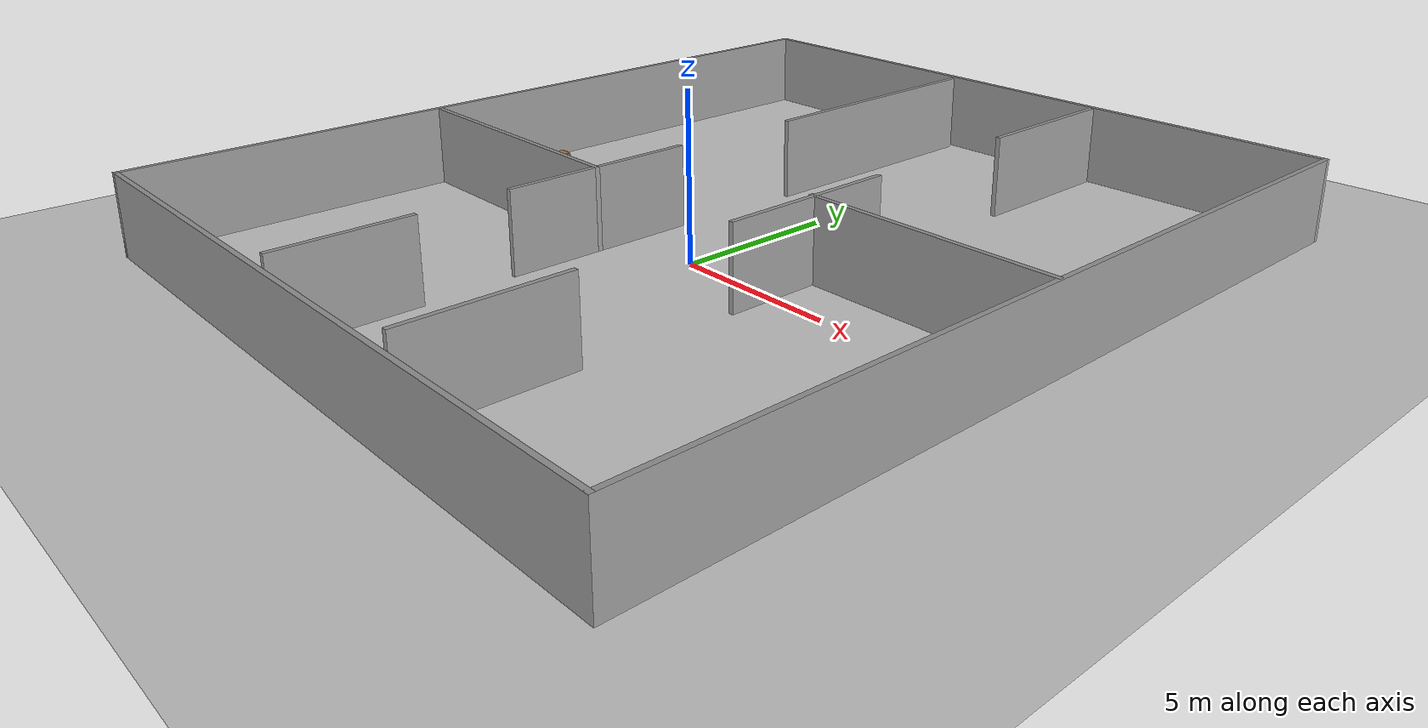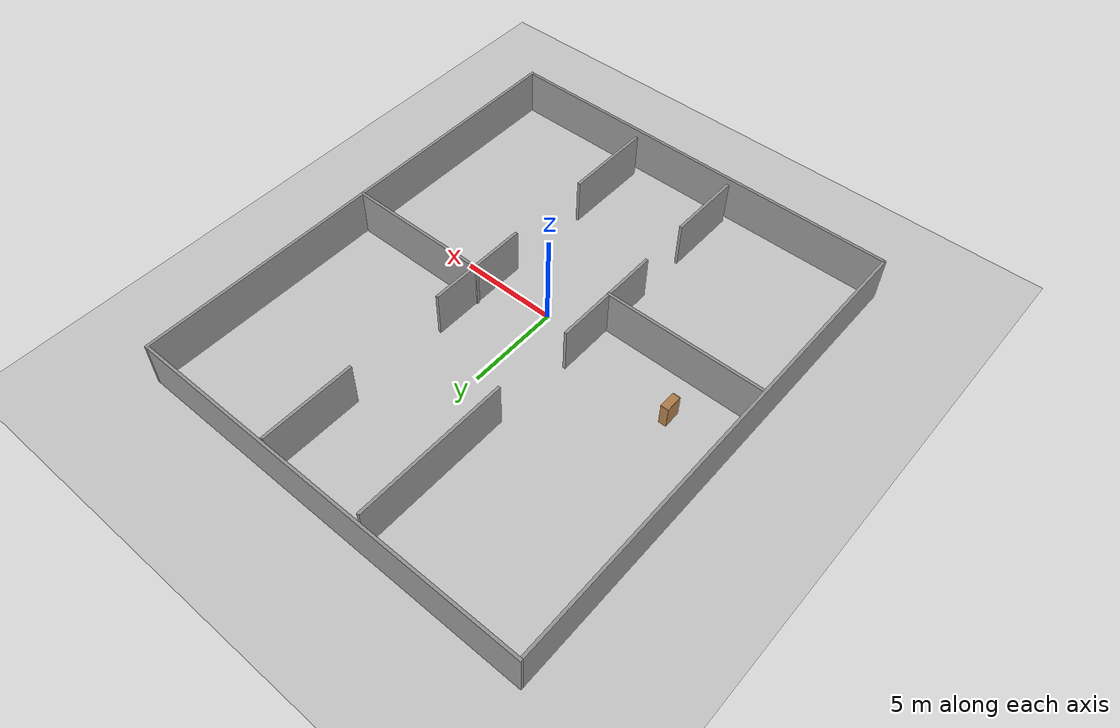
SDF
<sdf version='1.7'>
  <world name='default'>
    <light name='sun' type='directional'>
      <cast_shadows>0</cast_shadows>
      <pose>0 0 10 0 -0 0</pose>
      <diffuse>0.8 0.8 0.8 1</diffuse>
      <specular>0.2 0.2 0.2 1</specular>
      <attenuation>
        <range>1000</range>
        <constant>0.9</constant>
        <linear>0.01</linear>
        <quadratic>0.001</quadratic>
      </attenuation>
      <direction>-0.5 0.1 -0.9</direction>
      <spot>
        <inner_angle>0</inner_angle>
        <outer_angle>0</outer_angle>
        <falloff>0</falloff>
      </spot>
    </light>
    <model name='ground_plane'>
      <static>1</static>
      <link name='link'>
        <collision name='collision'>
          <geometry>
            <plane>
              <normal>0 0 1</normal>
              <size>100 100</size>
            </plane>
          </geometry>
          <surface>
            <contact>
              <collide_bitmask>65535</collide_bitmask>
              <ode/>
            </contact>
            <friction>
              <ode>
                <mu>100</mu>
                <mu2>50</mu2>
              </ode>
              <torsional>
                <ode/>
              </torsional>
            </friction>
            <bounce/>
          </surface>
          <max_contacts>10</max_contacts>
        </collision>
        <visual name='visual'>
          <cast_shadows>0</cast_shadows>
          <geometry>
            <plane>
              <normal>0 0 1</normal>
              <size>100 100</size>
            </plane>
          </geometry>
          <material>
            <script>
              <uri>file://media/materials/scripts/gazebo.material</uri>
              <name>Gazebo/Grey</name>
            </script>
          </material>
        </visual>
        <self_collide>0</self_collide>
        <enable_wind>0</enable_wind>
        <kinematic>0</kinematic>
      </link>
    </model>
    <gravity>0 0 -9.8</gravity>
    <physics type='ode'>
      <max_step_size>0.001</max_step_size>
      <real_time_factor>1.0</real_time_factor>
      <real_time_update_rate>1000</real_time_update_rate>
    </physics>
    <scene>
      <ambient>0.4 0.4 0.4 1</ambient>
      <background>0.7 0.7 0.7 1</background>
      <shadows>0</shadows>
      <origin_visual>0</origin_visual>
    </scene>
    <audio>
      <device>default</device>
    </audio>
    <spherical_coordinates>
      <surface_model>EARTH_WGS84</surface_model>
      <latitude_deg>0</latitude_deg>
      <longitude_deg>0</longitude_deg>
      <elevation>0</elevation>
      <heading_deg>0</heading_deg>
    </spherical_coordinates>
    <model name='bookshelf'>
      <static>1</static>
      <link name='link'>
        <inertial>
          <mass>1</mass>
        </inertial>
        <collision name='back'>
          <pose>0 0.005 0.6 0 -0 0</pose>
          <geometry>
            <box>
              <size>0.9 0.01 1.2</size>
            </box>
          </geometry>
          <max_contacts>10</max_contacts>
          <surface>
            <contact>
              <ode/>
            </contact>
            <bounce/>
            <friction>
              <torsional>
                <ode/>
              </torsional>
              <ode/>
            </friction>
          </surface>
        </collision>
        <visual name='visual1'>
          <pose>0 0.005 0.6 0 -0 0</pose>
          <geometry>
            <box>
              <size>0.9 0.01 1.2</size>
            </box>
          </geometry>
          <material>
            <script>
              <uri>file://media/materials/scripts/gazebo.material</uri>
              <name>Gazebo/Wood</name>
            </script>
          </material>
        </visual>
        <collision name='left_side'>
          <pose>0.45 -0.195 0.6 0 -0 0</pose>
          <geometry>
            <box>
              <size>0.02 0.4 1.2</size>
            </box>
          </geometry>
          <max_contacts>10</max_contacts>
          <surface>
            <contact>
              <ode/>
            </contact>
            <bounce/>
            <friction>
              <torsional>
                <ode/>
              </torsional>
              <ode/>
            </friction>
          </surface>
        </collision>
        <visual name='visual2'>
          <pose>0.45 -0.195 0.6 0 -0 0</pose>
          <geometry>
            <box>
              <size>0.02 0.4 1.2</size>
            </box>
          </geometry>
          <material>
            <script>
              <uri>file://media/materials/scripts/gazebo.material</uri>
              <name>Gazebo/Wood</name>
            </script>
          </material>
        </visual>
        <collision name='right_side'>
          <pose>-0.45 -0.195 0.6 0 -0 0</pose>
          <geometry>
            <box>
              <size>0.02 0.4 1.2</size>
            </box>
          </geometry>
          <max_contacts>10</max_contacts>
          <surface>
            <contact>
              <ode/>
            </contact>
            <bounce/>
            <friction>
              <torsional>
                <ode/>
              </torsional>
              <ode/>
            </friction>
          </surface>
        </collision>
        <visual name='visual3'>
          <pose>-0.45 -0.195 0.6 0 -0 0</pose>
          <geometry>
            <box>
              <size>0.02 0.4 1.2</size>
            </box>
          </geometry>
          <material>
            <script>
              <uri>file://media/materials/scripts/gazebo.material</uri>
              <name>Gazebo/Wood</name>
            </script>
          </material>
        </visual>
        <collision name='bottom'>
          <pose>0 -0.195 0.03 0 -0 0</pose>
          <geometry>
            <box>
              <size>0.88 0.4 0.06</size>
            </box>
          </geometry>
          <max_contacts>10</max_contacts>
          <surface>
            <contact>
              <ode/>
            </contact>
            <bounce/>
            <friction>
              <torsional>
                <ode/>
              </torsional>
              <ode/>
            </friction>
          </surface>
        </collision>
        <visual name='visual4'>
          <pose>0 -0.195 0.03 0 -0 0</pose>
          <geometry>
            <box>
              <size>0.88 0.4 0.06</size>
            </box>
          </geometry>
          <material>
            <script>
              <uri>file://media/materials/scripts/gazebo.material</uri>
              <name>Gazebo/Wood</name>
            </script>
          </material>
        </visual>
        <collision name='top'>
          <pose>0 -0.195 1.19 0 -0 0</pose>
          <geometry>
            <box>
              <size>0.88 0.4 0.02</size>
            </box>
          </geometry>
          <max_contacts>10</max_contacts>
          <surface>
            <contact>
              <ode/>
            </contact>
            <bounce/>
            <friction>
              <torsional>
                <ode/>
              </torsional>
              <ode/>
            </friction>
          </surface>
        </collision>
        <visual name='visual5'>
          <pose>0 -0.195 1.19 0 -0 0</pose>
          <geometry>
            <box>
              <size>0.88 0.4 0.02</size>
            </box>
          </geometry>
          <material>
            <script>
              <uri>file://media/materials/scripts/gazebo.material</uri>
              <name>Gazebo/Wood</name>
            </script>
          </material>
        </visual>
        <collision name='low_shelf'>
          <pose>0 -0.195 0.43 0 -0 0</pose>
          <geometry>
            <box>
              <size>0.88 0.4 0.02</size>
            </box>
          </geometry>
          <max_contacts>10</max_contacts>
          <surface>
            <contact>
              <ode/>
            </contact>
            <bounce/>
            <friction>
              <torsional>
                <ode/>
              </torsional>
              <ode/>
            </friction>
          </surface>
        </collision>
        <visual name='visual6'>
          <pose>0 -0.195 0.43 0 -0 0</pose>
          <geometry>
            <box>
              <size>0.88 0.4 0.02</size>
            </box>
          </geometry>
          <material>
            <script>
              <uri>file://media/materials/scripts/gazebo.material</uri>
              <name>Gazebo/Wood</name>
            </script>
          </material>
        </visual>
        <collision name='high_shelf'>
          <pose>0 -0.195 0.8 0 -0 0</pose>
          <geometry>
            <box>
              <size>0.88 0.4 0.02</size>
            </box>
          </geometry>
          <max_contacts>10</max_contacts>
          <surface>
            <contact>
              <ode/>
            </contact>
            <bounce/>
            <friction>
              <torsional>
                <ode/>
              </torsional>
              <ode/>
            </friction>
          </surface>
        </collision>
        <visual name='visual7'>
          <pose>0 -0.195 0.8 0 -0 0</pose>
          <geometry>
            <box>
              <size>0.88 0.4 0.02</size>
            </box>
          </geometry>
          <material>
            <script>
              <uri>file://media/materials/scripts/gazebo.material</uri>
              <name>Gazebo/Wood</name>
            </script>
          </material>
        </visual>
        <self_collide>0</self_collide>
        <enable_wind>0</enable_wind>
        <kinematic>0</kinematic>
      </link>
      <pose>-8.06127 1.00754 0 0 -0 1.57611</pose>
    </model>
    <gui fullscreen='0'>
      <camera name='user_camera'>
        <pose>10.4408 0.74006 47.8157 -0 1.2982 -3.14006</pose>
        <view_controller>orbit</view_controller>
        <projection_type>perspective</projection_type>
      </camera>
    </gui>
    <model name='small_room'>
      <pose>-0.133591 1.6178 0 0 -0 0</pose>
      <link name='Wall_37'>
        <collision name='Wall_37_Collision'>
          <geometry>
            <box>
              <size>26 0.15 2.5</size>
            </box>
          </geometry>
          <pose>0 0 1.25 0 -0 0</pose>
          <max_contacts>10</max_contacts>
          <surface>
            <contact>
              <ode/>
            </contact>
            <bounce/>
            <friction>
              <torsional>
                <ode/>
              </torsional>
              <ode/>
            </friction>
          </surface>
        </collision>
        <visual name='Wall_37_Visual'>
          <pose>0 0 1.25 0 -0 0</pose>
          <geometry>
            <box>
              <size>26 0.15 2.5</size>
            </box>
          </geometry>
          <material>
            <script>
              <uri>file://media/materials/scripts/gazebo.material</uri>
              <name>Gazebo/Grey</name>
            </script>
            <ambient>1 1 1 1</ambient>
          </material>
          <meta>
            <layer>0</layer>
          </meta>
        </visual>
        <pose>-10.925 -0 0 0 -0 -1.5708</pose>
        <self_collide>0</self_collide>
        <enable_wind>0</enable_wind>
        <kinematic>0</kinematic>
      </link>
      <link name='Wall_38'>
        <collision name='Wall_38_Collision'>
          <geometry>
            <box>
              <size>22 0.15 2.5</size>
            </box>
          </geometry>
          <pose>0 0 1.25 0 -0 0</pose>
          <max_contacts>10</max_contacts>
          <surface>
            <contact>
              <ode/>
            </contact>
            <bounce/>
            <friction>
              <torsional>
                <ode/>
              </torsional>
              <ode/>
            </friction>
          </surface>
        </collision>
        <visual name='Wall_38_Visual'>
          <pose>0 0 1.25 0 -0 0</pose>
          <geometry>
            <box>
              <size>22 0.15 2.5</size>
            </box>
          </geometry>
          <material>
            <script>
              <uri>file://media/materials/scripts/gazebo.material</uri>
              <name>Gazebo/Grey</name>
            </script>
            <ambient>1 1 1 1</ambient>
          </material>
          <meta>
            <layer>0</layer>
          </meta>
        </visual>
        <pose>0 -12.925 0 0 -0 0</pose>
        <self_collide>0</self_collide>
        <enable_wind>0</enable_wind>
        <kinematic>0</kinematic>
      </link>
      <link name='Wall_39'>
        <collision name='Wall_39_Collision'>
          <geometry>
            <box>
              <size>26 0.15 2.5</size>
            </box>
          </geometry>
          <pose>0 0 1.25 0 -0 0</pose>
          <max_contacts>10</max_contacts>
          <surface>
            <contact>
              <ode/>
            </contact>
            <bounce/>
            <friction>
              <torsional>
                <ode/>
              </torsional>
              <ode/>
            </friction>
          </surface>
        </collision>
        <visual name='Wall_39_Visual'>
          <pose>0 0 1.25 0 -0 0</pose>
          <geometry>
            <box>
              <size>26 0.15 2.5</size>
            </box>
          </geometry>
          <material>
            <script>
              <uri>file://media/materials/scripts/gazebo.material</uri>
              <name>Gazebo/Grey</name>
            </script>
            <ambient>1 1 1 1</ambient>
          </material>
          <meta>
            <layer>0</layer>
          </meta>
        </visual>
        <pose>10.925 -0 0 0 -0 1.5708</pose>
        <self_collide>0</self_collide>
        <enable_wind>0</enable_wind>
        <kinematic>0</kinematic>
      </link>
      <link name='Wall_40'>
        <collision name='Wall_40_Collision'>
          <geometry>
            <box>
              <size>22 0.15 2.5</size>
            </box>
          </geometry>
          <pose>0 0 1.25 0 -0 0</pose>
          <max_contacts>10</max_contacts>
          <surface>
            <contact>
              <ode/>
            </contact>
            <bounce/>
            <friction>
              <torsional>
                <ode/>
              </torsional>
              <ode/>
            </friction>
          </surface>
        </collision>
        <visual name='Wall_40_Visual'>
          <pose>0 0 1.25 0 -0 0</pose>
          <geometry>
            <box>
              <size>22 0.15 2.5</size>
            </box>
          </geometry>
          <material>
            <script>
              <uri>file://media/materials/scripts/gazebo.material</uri>
              <name>Gazebo/Grey</name>
            </script>
            <ambient>1 1 1 1</ambient>
          </material>
          <meta>
            <layer>0</layer>
          </meta>
        </visual>
        <pose>0 12.925 0 0 -0 3.14159</pose>
        <self_collide>0</self_collide>
        <enable_wind>0</enable_wind>
        <kinematic>0</kinematic>
      </link>
      <static>1</static>
    </model>
    <magnetic_field>6e-06 2.3e-05 -4.2e-05</magnetic_field>
    <atmosphere type='adiabatic'/>
    <wind/>
    <model name='rooms_basic'>
      <pose>-0.096126 1.77142 0 0 -0 0</pose>
      <link name='Wall_20'>
        <collision name='Wall_20_Collision'>
          <geometry>
            <box>
              <size>5 0.15 2.5</size>
            </box>
          </geometry>
          <pose>0 0 1.25 0 -0 0</pose>
          <max_contacts>10</max_contacts>
          <surface>
            <contact>
              <ode/>
            </contact>
            <bounce/>
            <friction>
              <torsional>
                <ode/>
              </torsional>
              <ode/>
            </friction>
          </surface>
        </collision>
        <visual name='Wall_20_Visual'>
          <pose>0 0 1.25 0 -0 0</pose>
          <geometry>
            <box>
              <size>5 0.15 2.5</size>
            </box>
          </geometry>
          <material>
            <script>
              <uri>file://media/materials/scripts/gazebo.material</uri>
              <name>Gazebo/Grey</name>
            </script>
            <ambient>1 1 1 1</ambient>
          </material>
          <meta>
            <layer>0</layer>
          </meta>
        </visual>
        <pose>3.31142 10.1489 0 0 -0 -1.5708</pose>
        <self_collide>0</self_collide>
        <enable_wind>0</enable_wind>
        <kinematic>0</kinematic>
      </link>
      <link name='Wall_23'>
        <collision name='Wall_23_Collision'>
          <geometry>
            <box>
              <size>5.5 0.15 2.5</size>
            </box>
          </geometry>
          <pose>0 0 1.25 0 -0 0</pose>
          <max_contacts>10</max_contacts>
          <surface>
            <contact>
              <ode/>
            </contact>
            <bounce/>
            <friction>
              <torsional>
                <ode/>
              </torsional>
              <ode/>
            </friction>
          </surface>
        </collision>
        <visual name='Wall_23_Visual'>
          <pose>0 0 1.25 0 -0 0</pose>
          <geometry>
            <box>
              <size>5.5 0.15 2.5</size>
            </box>
          </geometry>
          <material>
            <script>
              <uri>file://media/materials/scripts/gazebo.material</uri>
              <name>Gazebo/Grey</name>
            </script>
            <ambient>1 1 1 1</ambient>
          </material>
          <meta>
            <layer>0</layer>
          </meta>
        </visual>
        <pose>3.31142 -0.431594 0 0 -0 -1.5708</pose>
        <self_collide>0</self_collide>
        <enable_wind>0</enable_wind>
        <kinematic>0</kinematic>
      </link>
      <link name='Wall_26'>
        <collision name='Wall_26_Collision'>
          <geometry>
            <box>
              <size>4.75 0.15 2.5</size>
            </box>
          </geometry>
          <pose>0 0 1.25 0 -0 0</pose>
          <max_contacts>10</max_contacts>
          <surface>
            <contact>
              <ode/>
            </contact>
            <bounce/>
            <friction>
              <torsional>
                <ode/>
              </torsional>
              <ode/>
            </friction>
          </surface>
        </collision>
        <visual name='Wall_26_Visual'>
          <pose>0 0 1.25 0 -0 0</pose>
          <geometry>
            <box>
              <size>4.75 0.15 2.5</size>
            </box>
          </geometry>
          <material>
            <script>
              <uri>file://media/materials/scripts/gazebo.material</uri>
              <name>Gazebo/Grey</name>
            </script>
            <ambient>1 1 1 1</ambient>
          </material>
          <meta>
            <layer>0</layer>
          </meta>
        </visual>
        <pose>3.24066 -10.1749 0 0 -0 -1.5708</pose>
        <self_collide>0</self_collide>
        <enable_wind>0</enable_wind>
        <kinematic>0</kinematic>
      </link>
      <link name='Wall_28'>
        <collision name='Wall_28_Collision'>
          <geometry>
            <box>
              <size>7.75 0.15 2.5</size>
            </box>
          </geometry>
          <pose>0 0 1.25 0 -0 0</pose>
          <max_contacts>10</max_contacts>
          <surface>
            <contact>
              <ode/>
            </contact>
            <bounce/>
            <friction>
              <torsional>
                <ode/>
              </torsional>
              <ode/>
            </friction>
          </surface>
        </collision>
        <visual name='Wall_28_Visual'>
          <pose>0 0 1.25 0 -0 0</pose>
          <geometry>
            <box>
              <size>7.75 0.15 2.5</size>
            </box>
          </geometry>
          <material>
            <script>
              <uri>file://media/materials/scripts/gazebo.material</uri>
              <name>Gazebo/Grey</name>
            </script>
            <ambient>1 1 1 1</ambient>
          </material>
          <meta>
            <layer>0</layer>
          </meta>
        </visual>
        <pose>7.04066 -0.233091 0 0 -0 0</pose>
        <self_collide>0</self_collide>
        <enable_wind>0</enable_wind>
        <kinematic>0</kinematic>
      </link>
      <link name='Wall_35'>
        <collision name='Wall_35_Collision'>
          <geometry>
            <box>
              <size>8.25 0.15 2.5</size>
            </box>
          </geometry>
          <pose>0 0 1.25 0 -0 0</pose>
          <max_contacts>10</max_contacts>
          <surface>
            <contact>
              <ode/>
            </contact>
            <bounce/>
            <friction>
              <torsional>
                <ode/>
              </torsional>
              <ode/>
            </friction>
          </surface>
        </collision>
        <visual name='Wall_35_Visual'>
          <pose>0 0 1.25 0 -0 0</pose>
          <geometry>
            <box>
              <size>8.25 0.15 2.5</size>
            </box>
          </geometry>
          <material>
            <script>
              <uri>file://media/materials/scripts/gazebo.material</uri>
              <name>Gazebo/Grey</name>
            </script>
            <ambient>1 1 1 1</ambient>
          </material>
          <meta>
            <layer>0</layer>
          </meta>
        </visual>
        <pose>-2.27839 8.38242 0 0 -0 -1.5708</pose>
        <self_collide>0</self_collide>
        <enable_wind>0</enable_wind>
        <kinematic>0</kinematic>
      </link>
      <link name='Wall_37'>
        <collision name='Wall_37_Collision'>
          <geometry>
            <box>
              <size>6 0.15 2.5</size>
            </box>
          </geometry>
          <pose>0 0 1.25 0 -0 0</pose>
          <max_contacts>10</max_contacts>
          <surface>
            <contact>
              <ode/>
            </contact>
            <bounce/>
            <friction>
              <torsional>
                <ode/>
              </torsional>
              <ode/>
            </friction>
          </surface>
        </collision>
        <visual name='Wall_37_Visual'>
          <pose>0 0 1.25 0 -0 0</pose>
          <geometry>
            <box>
              <size>6 0.15 2.5</size>
            </box>
          </geometry>
          <material>
            <script>
              <uri>file://media/materials/scripts/gazebo.material</uri>
              <name>Gazebo/Grey</name>
            </script>
            <ambient>1 1 1 1</ambient>
          </material>
          <meta>
            <layer>0</layer>
          </meta>
        </visual>
        <pose>-2.49066 -2.87506 0 0 -0 -1.5708</pose>
        <self_collide>0</self_collide>
        <enable_wind>0</enable_wind>
        <kinematic>0</kinematic>
      </link>
      <link name='Wall_41'>
        <collision name='Wall_41_Collision'>
          <geometry>
            <box>
              <size>4 0.15 2.5</size>
            </box>
          </geometry>
          <pose>0 0 1.25 0 -0 0</pose>
          <max_contacts>10</max_contacts>
          <surface>
            <contact>
              <ode/>
            </contact>
            <bounce/>
            <friction>
              <torsional>
                <ode/>
              </torsional>
              <ode/>
            </friction>
          </surface>
        </collision>
        <visual name='Wall_41_Visual'>
          <pose>0 0 1.25 0 -0 0</pose>
          <geometry>
            <box>
              <size>4 0.15 2.5</size>
            </box>
          </geometry>
          <material>
            <script>
              <uri>file://media/materials/scripts/gazebo.material</uri>
              <name>Gazebo/Grey</name>
            </script>
            <ambient>1 1 1 1</ambient>
          </material>
          <meta>
            <layer>0</layer>
          </meta>
        </visual>
        <pose>-2.4199 -10.6489 0 0 -0 -1.5708</pose>
        <self_collide>0</self_collide>
        <enable_wind>0</enable_wind>
        <kinematic>0</kinematic>
      </link>
      <link name='Wall_43'>
        <collision name='Wall_43_Collision'>
          <geometry>
            <box>
              <size>8.5 0.15 2.5</size>
            </box>
          </geometry>
          <pose>0 0 1.25 0 -0 0</pose>
          <max_contacts>10</max_contacts>
          <surface>
            <contact>
              <ode/>
            </contact>
            <bounce/>
            <friction>
              <torsional>
                <ode/>
              </torsional>
              <ode/>
            </friction>
          </surface>
        </collision>
        <visual name='Wall_43_Visual'>
          <pose>0 0 1.25 0 -0 0</pose>
          <geometry>
            <box>
              <size>8.5 0.15 2.5</size>
            </box>
          </geometry>
          <material>
            <script>
              <uri>file://media/materials/scripts/gazebo.material</uri>
              <name>Gazebo/Grey</name>
            </script>
            <ambient>1 1 1 1</ambient>
          </material>
          <meta>
            <layer>0</layer>
          </meta>
        </visual>
        <pose>-6.66566 -2.99262 0 0 -0 3.14159</pose>
        <self_collide>0</self_collide>
        <enable_wind>0</enable_wind>
        <kinematic>0</kinematic>
      </link>
      <static>1</static>
    </model>
  </world>
</sdf>
